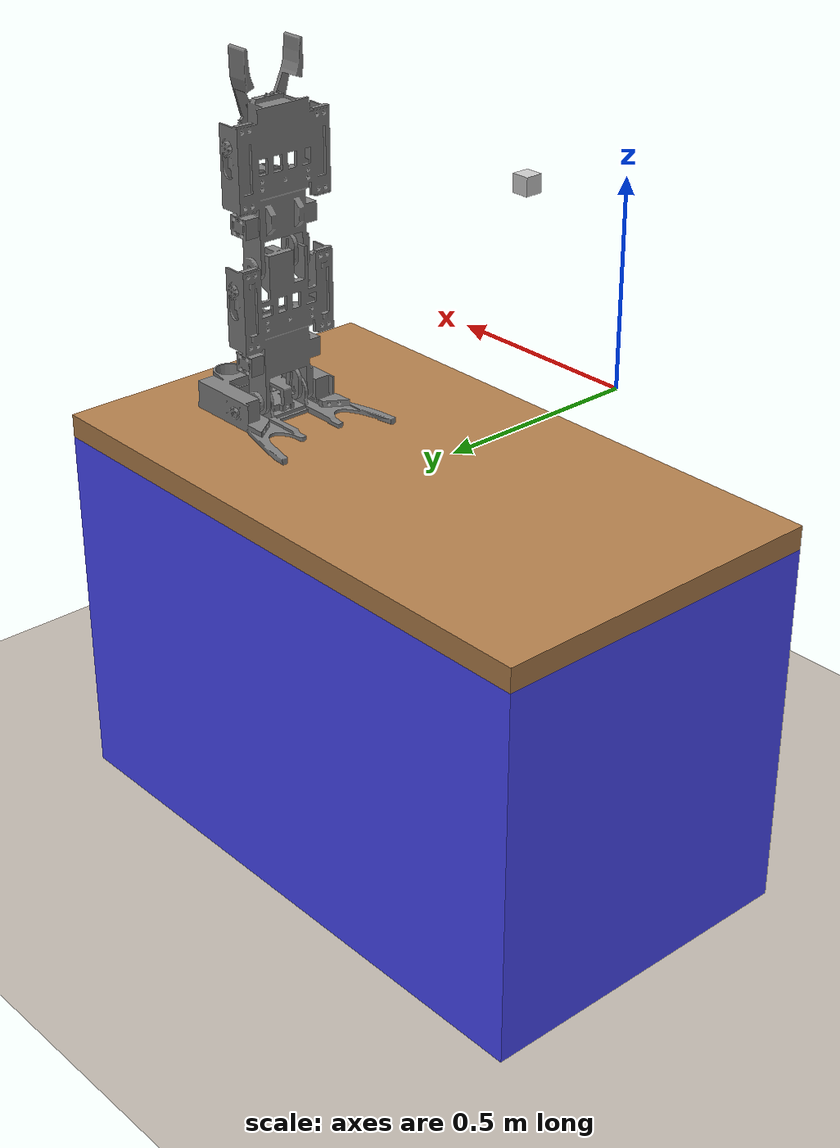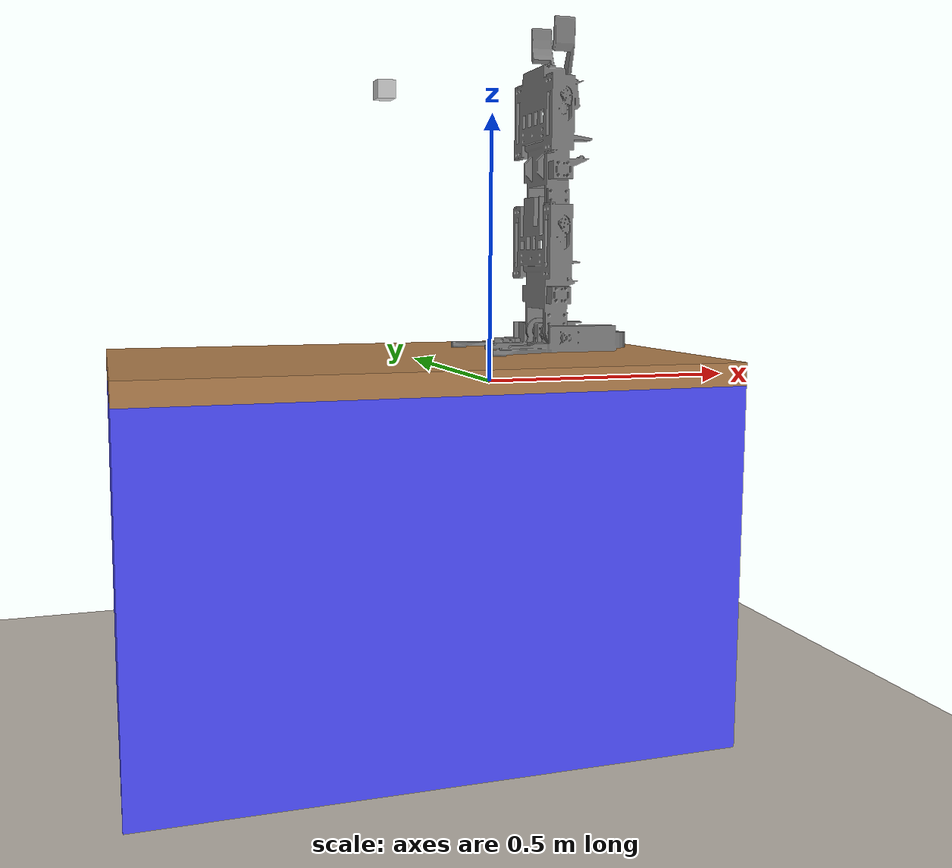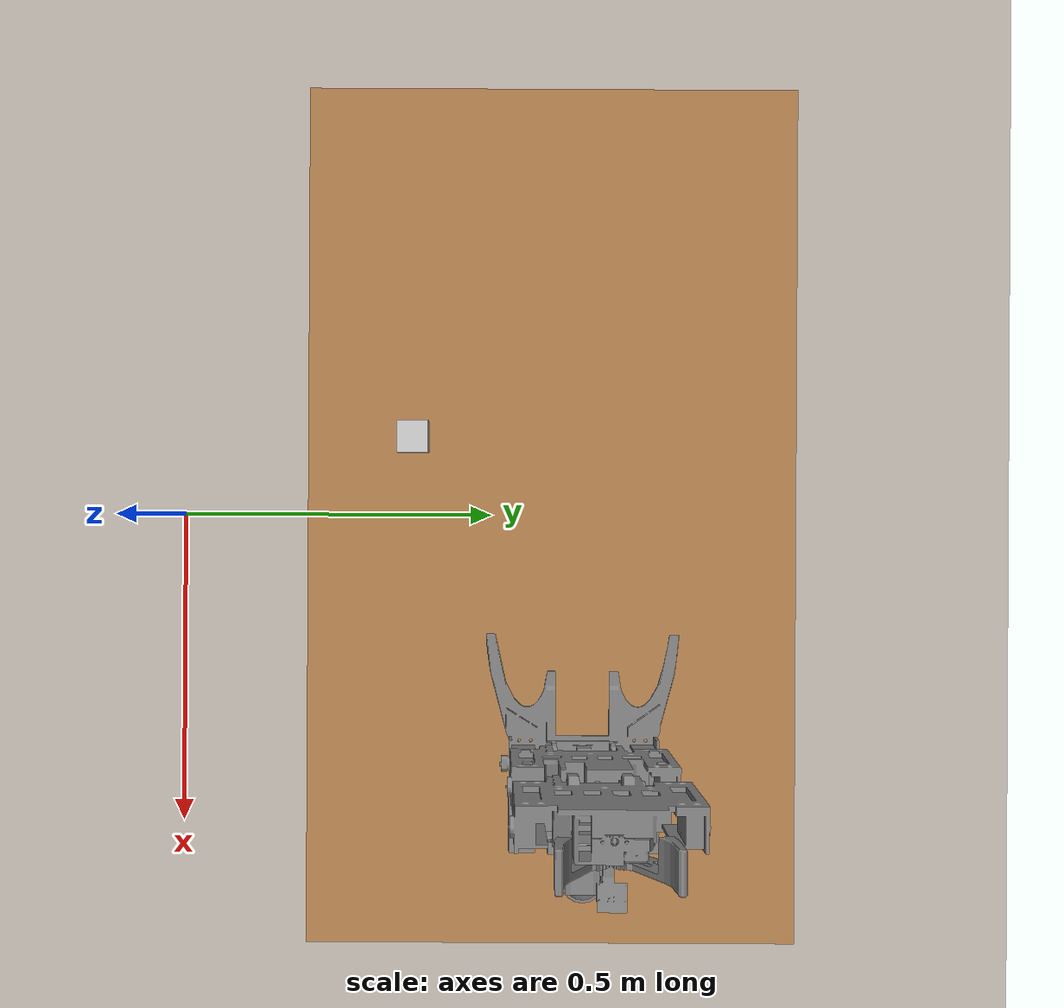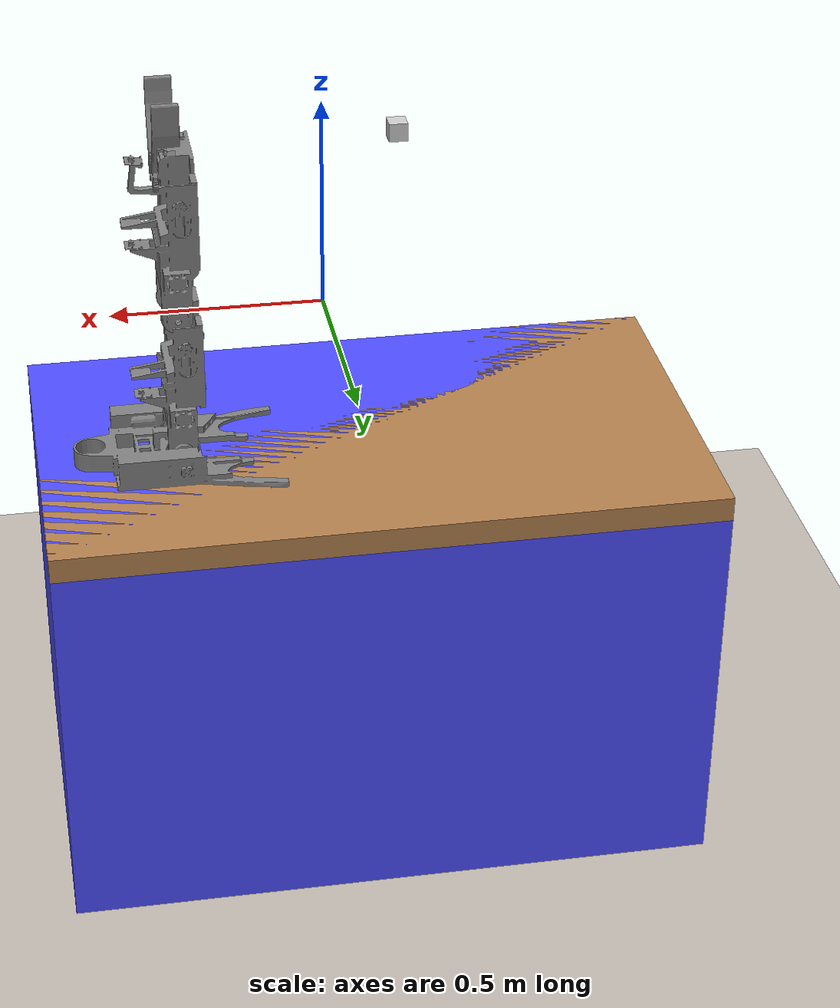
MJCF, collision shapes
<mujoco model="modular_arm_playground">
  <include file="environment.xml"/>
  <include file="robot.xml"/>
  <worldbody>

    <camera name="scene_cam"
        pos="-0.780 -0.915 1.2"
        mode="targetbody"
        target="Bot1_body"
        fovy="45"/>

    <body name="red_cube" pos="-0.10 0.4 0.6">
        <geom name="red_cube_geom"
              type="box"
              size="0.02 0.02 0.02"
              rgba="0.8 0.8 0.8 1"
              contype="0"
              conaffinity="0"/>
      </body>
  </worldbody>
</mujoco>

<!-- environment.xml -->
<mujocoinclude>
  <option timestep="0.0025" iterations="50" tolerance="1e-10"
          solver="Newton" jacobian="dense" cone="elliptic"/>

  <option gravity="0 0 -9.81"
        timestep="0.0025"
        solver="Newton"
        iterations="50"
        tolerance="1e-10"/>

  <asset>
    <texture type="skybox" builtin="gradient"
             rgb1=".50 .495 .48" rgb2=".50 .495 .48"
             width="32" height="32"/>

    <texture name="T_table" type="cube" file="../Textures/wood2.png"/>
    <texture name="T_floor" type="2d" file="../Textures/floor2.png"/>
    <texture name="T_wallmetal" type="cube" file="../Textures/metal1.png"/>

    <material name="basic_floor" texture="T_floor"
              texrepeat="12 12" shininess=".3" specular="0.5" reflectance="0.2"/>
    <material name="table_wood" texture="T_table"
              shininess=".3" specular="0.5"/>
    <material name="table_col" rgba="0.3 0.3 1.0 0.5"
              shininess="0" specular="0"/>
    <material name="wall_metal" texture="T_wallmetal"
              shininess="1" reflectance="1" specular=".5"/>

    <mesh name="tablebody" file="../Meshes/tablebody.stl" scale="1 1 1"/>
    <mesh name="tabletop" file="../Meshes/tabletop.stl" scale="1 1 1"/>
  </asset>

  <visual>
    <map fogstart="1.5" fogend="5" force="0.1" znear="0.01"/>
    <quality shadowsize="4096" offsamples="4"/>
    <headlight ambient="0.4 0.4 0.4"/>
  </visual>

  <worldbody>
    <light directional="true" castshadow="false"
           diffuse=".3 .3 .3" specular="0.3 0.3 0.3"
           pos="-1 -1 1" dir="1 1 -1"/>
    <light directional="true"
           diffuse=".3 .3 .3" specular="0.3 0.3 0.3"
           pos="1 -1 1" dir="-1 1 -1"/>
    <light directional="true" castshadow="false"
           diffuse=".3 .3 .3" specular="0.3 0.3 0.3"
           pos="0 1 1" dir="0 -1 -1"/>

    <body name="tablelink" pos="0 .6 0">
      <geom name="table_top_surface"
            type="box" size=".7 .4 .027" pos="0 0 -.027"
            material="table_wood" group="1"
            contype="0" conaffinity="0"/>

      <geom name="table_leg_mesh"
            type="mesh" mesh="tablebody" pos="0 0 -0.65"
            material="table_wood" group="1"
            contype="0" conaffinity="0"/>

      <geom name="table_collision"
            type="box" size="0.7 0.4 0.46" pos="0 0 -0.46"
            friction="0.2 0.001 0.0001"
            material="table_col" group="4"
            contype="1" conaffinity="1"
            solref="0.0001 2" solimp="0.99 0.99 0.0001"/>
    </body>
    <geom name="floor"
          type="plane" size="8 8 .1" pos="0 0 -.913"
          material="basic_floor"
          contype="1" conaffinity="1" condim="3"/>
  </worldbody>
</mujocoinclude>

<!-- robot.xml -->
<mujocoinclude>
  <compiler angle="radian" inertiafromgeom="true"/>

  <asset>
    <mesh name="Bot1"           file="../Meshes/Bot1.stl"           scale="0.0015 0.0015 0.0015"/>
    <mesh name="MidSegment"     file="../Meshes/MidSegment.stl"     scale="0.0015 0.0015 0.0015"/>
    <mesh name="EndSegment"     file="../Meshes/EndSegment.stl"     scale="0.0015 0.0015 0.0015"/>
    <mesh name="ClawMtrSide"    file="../Meshes/ClawMtrSide.stl"    scale="0.0015 0.0015 0.0015"/>
    <mesh name="ClawFollowSide" file="../Meshes/ClawFollowSide.stl" scale="0.0015 0.0015 0.0015"/>
  </asset>

  <visual>
    <rgba rangefinder="0 0 0 0"/>
  </visual>

  <default>
    <geom contype="1" conaffinity="1" density="700"/>
    <joint damping="30" frictionloss="2" limited="true"/>
  </default>

  <worldbody>
    <!-- Slide joint lets the robot drive forward/backward along the X axis -->
    <body name="BaseSlider" pos="0 0 0">
      <joint name="j_drive"
             type="slide"
             axis="1 0 0"
             pos="0 0 0"
             limited="true"
             range="-1.0 0.0"
             damping="50"
             frictionloss="2"/>
      <inertial pos="0 0 0" mass="0.2" diaginertia="0.001 0.001 0.001"/>
    <body name="BaseMount" pos="0.4 0.6 0.048">
      <body name="Bot1_body">
        <joint name="j_a_base"
               type="hinge"
               axis="0 0 1"
               pos="0 0 0"
               limited="true"
               range="-0.78539816339 0.78539816339"/>

        <body name="Bot1_chain" euler="0 1.5707963 0">
          <geom type="mesh" mesh="Bot1"/>

          <body name="MidSegment_body" pos="0 0 0" euler="0 0 3.14159265">
            <joint name="j_b_mid"
                   type="hinge"
                   axis="0 1 0"
                   pos="0 0 0"
                   limited="true"
                   range="0 0.69813170079"/>
            <geom type="mesh" mesh="MidSegment"/>

            <body name="EndSegment_body"
                  pos="0.309750 -1.9845e-7 -9.1695e-11"
                  euler="1.57079632679 0 0">
              <joint name="j_c_end"
                     type="hinge"
                     axis="0 0 -1"
                     pos="0 0 0"
                     limited="true"
                     range="-0.78539816339 1.91986217719"/>

              <geom type="mesh" mesh="EndSegment"/>

              <body name="ClawMtrSide_body"
                    pos="0.3015 0.0329 0.081"
                    euler="1.570796325 1.570796325 3.14159265">
                <body name="ClawMtrSide_fixed30" quat="0.9848077530 0.1736481777 0 0">
                  <geom type="mesh" mesh="ClawMtrSide"/>
                </body>
              </body>

              <body name="ClawFollowSide_body"
                    pos="0.3015 0.0279 0.021"
                    euler="-1.570796325 1.570796325 3.14159265">
                <body name="ClawFollowSide_fixed30" quat="0.9848077530 0.1736481777 0 0">
                  <geom type="mesh" mesh="ClawFollowSide"/>
                </body>
              </body>

              <body name="ToF" pos="0.363 -0.008 0.051">
                <site name="tof_site" pos="0 0 0" quat="0.70710678 0 0.70710678 0"/>
                <geom type="sphere" size="0.005" pos="0 0 0"
                      contype="0" conaffinity="0" density="0"/>
              </body>

              <body name="CameraFOV" pos="0.331 0.072 0.051">
                <camera name="pov_cam"
                        pos="0 0 0"
                        xyaxes="0 0 1  0.1391731010 0.9902680687 0"
                        fovy="48.8"/>
              </body>

            </body>
          </body>
        </body>
      </body>
    </body><!-- BaseMount -->
    </body><!-- BaseSlider -->
  </worldbody>

  <sensor>
    <rangefinder name="tof_range" site="tof_site"/>
  </sensor>

  <actuator>
    <position joint="j_drive"
              kp="1200" kv="120"
              forcelimited="true" forcerange="-120 120"
              ctrlrange="-0.70 0.0"/>

    <position joint="j_a_base"
              kp="800" kv="80"
              forcelimited="true" forcerange="-80 80"
              ctrlrange="-0.78539816339 0.78539816339"/>

    <position joint="j_b_mid"
              kp="700" kv="70"
              forcelimited="true" forcerange="-60 60"
              ctrlrange="0 0.43633231299"/>

    <position joint="j_c_end"
              kp="600" kv="60"
              forcelimited="true" forcerange="-40 40"
              ctrlrange="-0.78539816339 1.91986217719"/>
  </actuator>
</mujocoinclude>
